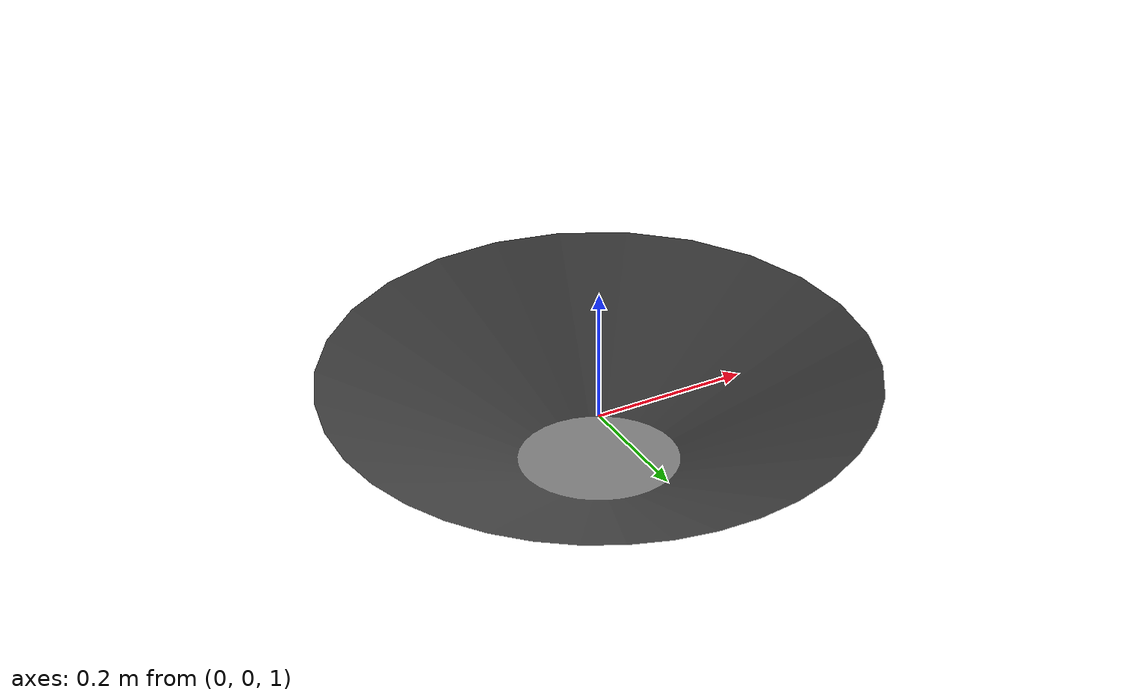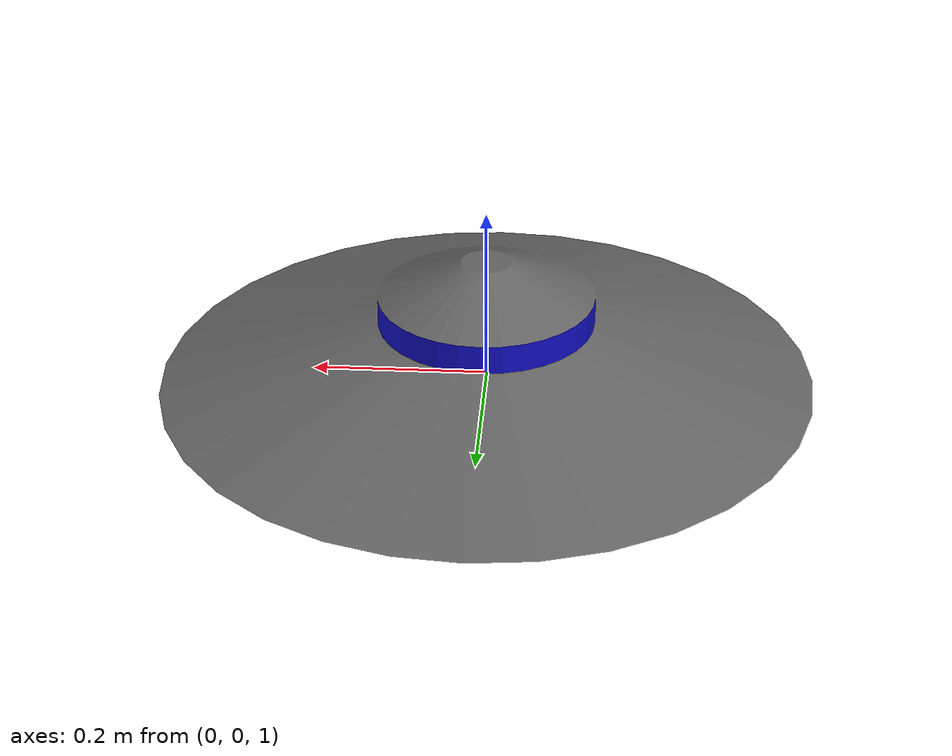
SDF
<?xml version="1.0" encoding="UTF-8"?>

<sdf version='1.6'>
    <model name='ufo'>
      <pose frame=''>0 0 1 0 0 0</pose>
      <link name='link'>
        <visual name="visual">
          <geometry>
            <mesh>
              <uri>model://ufo.dae</uri>
              <scale> 0.08 0.08 0.08 </scale>
            </mesh>
          </geometry>
        </visual>
        <self_collide>0</self_collide>
        <kinematic>0</kinematic>
        <gravity>0</gravity>
      </link>
    </model>
</sdf>
